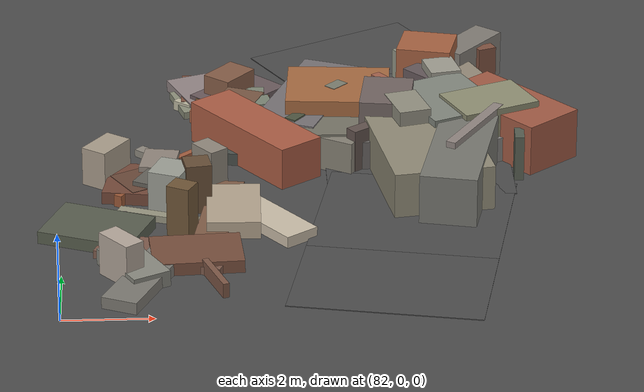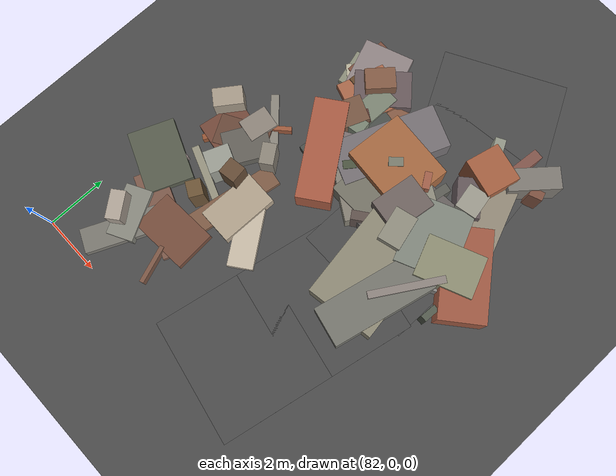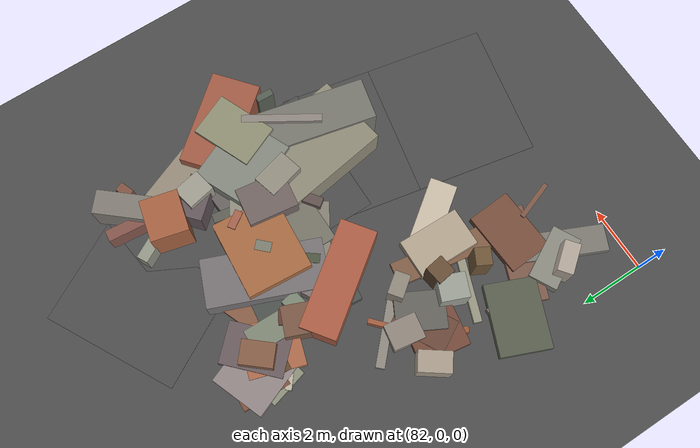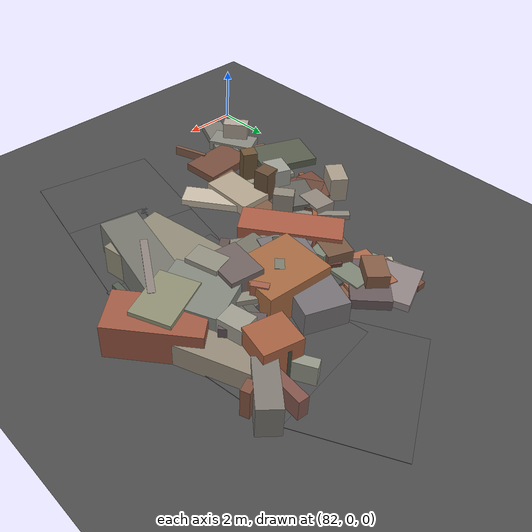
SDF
<sdf version="1.6">
 <world name="navitas_arena">
  <model name="ground_plane">
   <static>true</static>
   <link name="link">
    <collision name="collision">
     <geometry><plane><normal>0 0 1</normal><size>400 400</size></plane></geometry>
     <surface><friction><ode><mu>0.800</mu><mu2>0.800</mu2></ode></friction></surface>
    </collision>
    <visual name="visual">
     <cast_shadows>false</cast_shadows>
     <geometry><plane><normal>0 0 1</normal><size>400 400</size></plane></geometry>
     <material>
      <specular>0.04 0.04 0.04 1</specular>
      <script>
       <uri>file://media/materials/scripts/navitas_asphalt.material</uri>
       <name>Navitas/RealArenaAsphalt</name>
      </script>
     </material>
    </visual>
   </link>
  </model>
  <model name="road_zor_2_10">
   <static>true</static>
   <pose>89.139 1.800 0.040 0 0 1.373</pose>
   <link name="link">
    <collision name="col"><geometry><box><size>3.756 4.200 0.020</size></box></geometry></collision>
    <visual name="vis">
     <geometry><box><size>3.756 4.200 0.020</size></box></geometry>
     <material>
      <specular>0.04 0.04 0.04 1</specular>
      <script>
       <uri>file://media/materials/scripts/navitas_asphalt.material</uri>
       <name>Navitas/RealArenaAsphalt</name>
      </script>
     </material>
    </visual>
   </link>
  </model>
  <model name="road_zor_2_11">
   <static>true</static>
   <pose>89.698 4.600 0.040 0 0 1.374</pose>
   <link name="link">
    <collision name="col"><geometry><box><size>3.755 4.200 0.020</size></box></geometry></collision>
    <visual name="vis">
     <geometry><box><size>3.755 4.200 0.020</size></box></geometry>
     <material>
      <specular>0.04 0.04 0.04 1</specular>
      <script>
       <uri>file://media/materials/scripts/navitas_asphalt.material</uri>
       <name>Navitas/RealArenaAsphalt</name>
      </script>
     </material>
    </visual>
   </link>
  </model>
  <model name="road_zor_2_12">
   <static>true</static>
   <pose>89.978 7.460 0.040 0 0 1.570</pose>
   <link name="link">
    <collision name="col"><geometry><box><size>3.820 4.200 0.020</size></box></geometry></collision>
    <visual name="vis">
     <geometry><box><size>3.820 4.200 0.020</size></box></geometry>
     <material>
      <specular>0.04 0.04 0.04 1</specular>
      <script>
       <uri>file://media/materials/scripts/navitas_asphalt.material</uri>
       <name>Navitas/RealArenaAsphalt</name>
      </script>
     </material>
    </visual>
   </link>
  </model>
  <model name="road_zor_2_13">
   <static>true</static>
   <pose>89.792 10.340 0.040 0 0 1.702</pose>
   <link name="link">
    <collision name="col"><geometry><box><size>3.765 4.200 0.020</size></box></geometry></collision>
    <visual name="vis">
     <geometry><box><size>3.765 4.200 0.020</size></box></geometry>
     <material>
      <specular>0.04 0.04 0.04 1</specular>
      <script>
       <uri>file://media/materials/scripts/navitas_asphalt.material</uri>
       <name>Navitas/RealArenaAsphalt</name>
      </script>
     </material>
    </visual>
   </link>
  </model>
  <model name="road_zor_2_14">
   <static>true</static>
   <pose>89.014 12.833 0.040 0 0 2.073</pose>
   <link name="link">
    <collision name="col"><geometry><box><size>3.349 4.200 0.020</size></box></geometry></collision>
    <visual name="vis">
     <geometry><box><size>3.349 4.200 0.020</size></box></geometry>
     <material>
      <specular>0.04 0.04 0.04 1</specular>
      <script>
       <uri>file://media/materials/scripts/navitas_asphalt.material</uri>
       <name>Navitas/RealArenaAsphalt</name>
      </script>
     </material>
    </visual>
   </link>
  </model>
  <model name="blk_zor_2_2_0">
   <static>true</static>
   <pose>89.169 8.593 0.000 0 0 0</pose>
   <link name="link">
    <collision name="col_0">
     <pose>0.312 -0.887 0.514 0.000 0.000 3.781</pose>
     <geometry><box><size>2.586 0.300 1.029</size></box></geometry>
    </collision>
    <visual name="vis_0">
     <pose>0.312 -0.887 0.514 0.000 0.000 3.781</pose>
     <geometry><box><size>2.586 0.300 1.029</size></box></geometry>
     <material>
      <ambient>0.36 0.31 0.29 1</ambient>
      <diffuse>0.39 0.33 0.31 1</diffuse>
      <specular>0.05 0.05 0.045 1</specular>
     </material>
    </visual>
    <collision name="col_1">
     <pose>0.546 -0.175 0.464 0.000 0.000 1.514</pose>
     <geometry><box><size>0.316 0.416 0.927</size></box></geometry>
    </collision>
    <visual name="vis_1">
     <pose>0.546 -0.175 0.464 0.000 0.000 1.514</pose>
     <geometry><box><size>0.316 0.416 0.927</size></box></geometry>
     <material>
      <ambient>0.54 0.51 0.45 1</ambient>
      <diffuse>0.58 0.55 0.49 1</diffuse>
      <specular>0.05 0.05 0.045 1</specular>
     </material>
    </visual>
    <collision name="col_2">
     <pose>0.766 -0.119 0.439 0.000 0.000 3.158</pose>
     <geometry><box><size>1.869 0.158 0.878</size></box></geometry>
    </collision>
    <visual name="vis_2">
     <pose>0.766 -0.119 0.439 0.000 0.000 3.158</pose>
     <geometry><box><size>1.869 0.158 0.878</size></box></geometry>
     <material>
      <ambient>0.64 0.63 0.56 1</ambient>
      <diffuse>0.70 0.69 0.61 1</diffuse>
      <specular>0.05 0.05 0.045 1</specular>
     </material>
    </visual>
    <collision name="col_3">
     <pose>-0.960 0.451 0.611 0.000 0.000 2.368</pose>
     <geometry><box><size>0.296 0.462 1.221</size></box></geometry>
    </collision>
    <visual name="vis_3">
     <pose>-0.960 0.451 0.611 0.000 0.000 2.368</pose>
     <geometry><box><size>0.296 0.462 1.221</size></box></geometry>
     <material>
      <ambient>0.45 0.46 0.41 1</ambient>
      <diffuse>0.49 0.50 0.44 1</diffuse>
      <specular>0.05 0.05 0.045 1</specular>
     </material>
    </visual>
    <collision name="col_4">
     <pose>0.118 -0.460 0.301 0.000 0.000 1.837</pose>
     <geometry><box><size>0.359 0.343 0.603</size></box></geometry>
    </collision>
    <visual name="vis_4">
     <pose>0.118 -0.460 0.301 0.000 0.000 1.837</pose>
     <geometry><box><size>0.359 0.343 0.603</size></box></geometry>
     <material>
      <ambient>0.65 0.61 0.54 1</ambient>
      <diffuse>0.71 0.66 0.59 1</diffuse>
      <specular>0.05 0.05 0.045 1</specular>
     </material>
    </visual>
    <collision name="col_5">
     <pose>0.118 0.722 0.443 0.000 0.000 2.625</pose>
     <geometry><box><size>1.812 0.369 0.885</size></box></geometry>
    </collision>
    <visual name="vis_5">
     <pose>0.118 0.722 0.443 0.000 0.000 2.625</pose>
     <geometry><box><size>1.812 0.369 0.885</size></box></geometry>
     <material>
      <ambient>0.53 0.52 0.47 1</ambient>
      <diffuse>0.57 0.56 0.50 1</diffuse>
      <specular>0.05 0.05 0.045 1</specular>
     </material>
    </visual>
    <collision name="col_6">
     <pose>0.523 0.443 0.357 0.000 0.000 1.403</pose>
     <geometry><box><size>1.568 0.288 0.713</size></box></geometry>
    </collision>
    <visual name="vis_6">
     <pose>0.523 0.443 0.357 0.000 0.000 1.403</pose>
     <geometry><box><size>1.568 0.288 0.713</size></box></geometry>
     <material>
      <ambient>0.34 0.34 0.31 1</ambient>
      <diffuse>0.37 0.37 0.34 1</diffuse>
      <specular>0.05 0.05 0.045 1</specular>
     </material>
    </visual>
    <collision name="col_7">
     <pose>-0.547 0.396 0.371 0.000 0.000 3.007</pose>
     <geometry><box><size>1.194 0.198 0.742</size></box></geometry>
    </collision>
    <visual name="vis_7">
     <pose>-0.547 0.396 0.371 0.000 0.000 3.007</pose>
     <geometry><box><size>1.194 0.198 0.742</size></box></geometry>
     <material>
      <ambient>0.63 0.59 0.58 1</ambient>
      <diffuse>0.68 0.64 0.62 1</diffuse>
      <specular>0.05 0.05 0.045 1</specular>
     </material>
    </visual>
    <collision name="col_8">
     <pose>0.123 0.723 0.630 0.000 0.000 2.167</pose>
     <geometry><box><size>0.552 0.234 1.260</size></box></geometry>
    </collision>
    <visual name="vis_8">
     <pose>0.123 0.723 0.630 0.000 0.000 2.167</pose>
     <geometry><box><size>0.552 0.234 1.260</size></box></geometry>
     <material>
      <ambient>0.61 0.36 0.28 1</ambient>
      <diffuse>0.65 0.39 0.30 1</diffuse>
      <specular>0.05 0.05 0.045 1</specular>
     </material>
    </visual>
    <collision name="col_9">
     <pose>-0.916 0.479 0.604 0.000 0.000 3.066</pose>
     <geometry><box><size>2.349 1.958 1.208</size></box></geometry>
    </collision>
    <visual name="vis_9">
     <pose>-0.916 0.479 0.604 0.000 0.000 3.066</pose>
     <geometry><box><size>2.349 1.958 1.208</size></box></geometry>
     <material>
      <ambient>0.61 0.39 0.24 1</ambient>
      <diffuse>0.66 0.42 0.26 1</diffuse>
      <specular>0.05 0.05 0.045 1</specular>
     </material>
    </visual>
   </link>
  </model>
  <model name="blk_zor_2_2_1">
   <static>true</static>
   <pose>90.621 7.213 0.000 0 0 0</pose>
   <link name="link">
    <collision name="col_0">
     <pose>0.189 0.175 0.388 0.000 0.000 2.080</pose>
     <geometry><box><size>1.239 1.194 0.776</size></box></geometry>
    </collision>
    <visual name="vis_0">
     <pose>0.189 0.175 0.388 0.000 0.000 2.080</pose>
     <geometry><box><size>1.239 1.194 0.776</size></box></geometry>
     <material>
      <ambient>0.58 0.58 0.52 1</ambient>
      <diffuse>0.63 0.63 0.56 1</diffuse>
      <specular>0.05 0.05 0.045 1</specular>
     </material>
    </visual>
    <collision name="col_1">
     <pose>-1.125 1.232 0.385 0.000 0.000 2.233</pose>
     <geometry><box><size>1.858 0.280 0.770</size></box></geometry>
    </collision>
    <visual name="vis_1">
     <pose>-1.125 1.232 0.385 0.000 0.000 2.233</pose>
     <geometry><box><size>1.858 0.280 0.770</size></box></geometry>
     <material>
      <ambient>0.51 0.50 0.47 1</ambient>
      <diffuse>0.55 0.53 0.51 1</diffuse>
      <specular>0.05 0.05 0.045 1</specular>
     </material>
    </visual>
    <collision name="col_2">
     <pose>0.197 1.115 0.349 0.000 0.000 1.976</pose>
     <geometry><box><size>1.187 0.341 0.697</size></box></geometry>
    </collision>
    <visual name="vis_2">
     <pose>0.197 1.115 0.349 0.000 0.000 1.976</pose>
     <geometry><box><size>1.187 0.341 0.697</size></box></geometry>
     <material>
      <ambient>0.36 0.32 0.34 1</ambient>
      <diffuse>0.39 0.34 0.36 1</diffuse>
      <specular>0.05 0.05 0.045 1</specular>
     </material>
    </visual>
    <collision name="col_3">
     <pose>-0.589 0.703 0.591 0.000 0.000 2.886</pose>
     <geometry><box><size>1.658 0.274 1.183</size></box></geometry>
    </collision>
    <visual name="vis_3">
     <pose>-0.589 0.703 0.591 0.000 0.000 2.886</pose>
     <geometry><box><size>1.658 0.274 1.183</size></box></geometry>
     <material>
      <ambient>0.43 0.42 0.42 1</ambient>
      <diffuse>0.47 0.46 0.45 1</diffuse>
      <specular>0.05 0.05 0.045 1</specular>
     </material>
    </visual>
    <collision name="col_4">
     <pose>0.291 -0.646 0.298 0.000 0.000 1.623</pose>
     <geometry><box><size>1.203 0.313 0.597</size></box></geometry>
    </collision>
    <visual name="vis_4">
     <pose>0.291 -0.646 0.298 0.000 0.000 1.623</pose>
     <geometry><box><size>1.203 0.313 0.597</size></box></geometry>
     <material>
      <ambient>0.39 0.28 0.22 1</ambient>
      <diffuse>0.42 0.30 0.23 1</diffuse>
      <specular>0.05 0.05 0.045 1</specular>
     </material>
    </visual>
    <collision name="col_5">
     <pose>-1.186 -1.053 0.380 0.000 0.000 1.367</pose>
     <geometry><box><size>0.443 0.531 0.760</size></box></geometry>
    </collision>
    <visual name="vis_5">
     <pose>-1.186 -1.053 0.380 0.000 0.000 1.367</pose>
     <geometry><box><size>0.443 0.531 0.760</size></box></geometry>
     <material>
      <ambient>0.52 0.49 0.46 1</ambient>
      <diffuse>0.57 0.53 0.50 1</diffuse>
      <specular>0.05 0.05 0.045 1</specular>
     </material>
    </visual>
    <collision name="col_6">
     <pose>-1.299 1.022 0.704 0.000 0.000 1.432</pose>
     <geometry><box><size>1.478 1.140 1.409</size></box></geometry>
    </collision>
    <visual name="vis_6">
     <pose>-1.299 1.022 0.704 0.000 0.000 1.432</pose>
     <geometry><box><size>1.478 1.140 1.409</size></box></geometry>
     <material>
      <ambient>0.42 0.37 0.36 1</ambient>
      <diffuse>0.45 0.40 0.39 1</diffuse>
      <specular>0.05 0.05 0.045 1</specular>
     </material>
    </visual>
    <collision name="col_7">
     <pose>1.386 0.445 0.545 0.000 0.000 2.137</pose>
     <geometry><box><size>0.361 0.304 1.089</size></box></geometry>
    </collision>
    <visual name="vis_7">
     <pose>1.386 0.445 0.545 0.000 0.000 2.137</pose>
     <geometry><box><size>0.361 0.304 1.089</size></box></geometry>
     <material>
      <ambient>0.63 0.37 0.31 1</ambient>
      <diffuse>0.69 0.40 0.33 1</diffuse>
      <specular>0.05 0.05 0.045 1</specular>
     </material>
    </visual>
   </link>
  </model>
  <model name="blk_zor_2_2_2">
   <static>true</static>
   <pose>87.882 8.145 0.000 0 0 0</pose>
   <link name="link">
    <collision name="col_0">
     <pose>-1.571 -0.407 0.486 0.000 0.000 2.206</pose>
     <geometry><box><size>3.346 1.117 0.972</size></box></geometry>
    </collision>
    <visual name="vis_0">
     <pose>-1.571 -0.407 0.486 0.000 0.000 2.206</pose>
     <geometry><box><size>3.346 1.117 0.972</size></box></geometry>
     <material>
      <ambient>0.63 0.34 0.25 1</ambient>
      <diffuse>0.68 0.37 0.27 1</diffuse>
      <specular>0.05 0.05 0.045 1</specular>
     </material>
    </visual>
    <collision name="col_1">
     <pose>-0.735 -0.641 0.329 0.000 0.000 3.148</pose>
     <geometry><box><size>2.348 0.246 0.658</size></box></geometry>
    </collision>
    <visual name="vis_1">
     <pose>-0.735 -0.641 0.329 0.000 0.000 3.148</pose>
     <geometry><box><size>2.348 0.246 0.658</size></box></geometry>
     <material>
      <ambient>0.69 0.65 0.58 1</ambient>
      <diffuse>0.75 0.70 0.62 1</diffuse>
      <specular>0.05 0.05 0.045 1</specular>
     </material>
    </visual>
    <collision name="col_2">
     <pose>1.475 -0.360 0.418 0.000 0.000 3.141</pose>
     <geometry><box><size>3.896 1.313 0.837</size></box></geometry>
    </collision>
    <visual name="vis_2">
     <pose>1.475 -0.360 0.418 0.000 0.000 3.141</pose>
     <geometry><box><size>3.896 1.313 0.837</size></box></geometry>
     <material>
      <ambient>0.43 0.42 0.38 1</ambient>
      <diffuse>0.47 0.46 0.41 1</diffuse>
      <specular>0.05 0.05 0.045 1</specular>
     </material>
    </visual>
    <collision name="col_3">
     <pose>-0.654 -0.123 0.454 0.000 0.000 2.489</pose>
     <geometry><box><size>0.276 0.418 0.908</size></box></geometry>
    </collision>
    <visual name="vis_3">
     <pose>-0.654 -0.123 0.454 0.000 0.000 2.489</pose>
     <geometry><box><size>0.276 0.418 0.908</size></box></geometry>
     <material>
      <ambient>0.29 0.31 0.25 1</ambient>
      <diffuse>0.31 0.34 0.26 1</diffuse>
      <specular>0.05 0.05 0.045 1</specular>
     </material>
    </visual>
    <collision name="col_4">
     <pose>0.235 0.315 0.391 0.000 0.000 4.173</pose>
     <geometry><box><size>2.701 2.370 0.783</size></box></geometry>
    </collision>
    <visual name="vis_4">
     <pose>0.235 0.315 0.391 0.000 0.000 4.173</pose>
     <geometry><box><size>2.701 2.370 0.783</size></box></geometry>
     <material>
      <ambient>0.49 0.47 0.42 1</ambient>
      <diffuse>0.53 0.51 0.46 1</diffuse>
      <specular>0.05 0.05 0.045 1</specular>
     </material>
    </visual>
    <collision name="col_5">
     <pose>-0.276 1.251 0.436 0.000 0.000 4.329</pose>
     <geometry><box><size>3.553 1.458 0.872</size></box></geometry>
    </collision>
    <visual name="vis_5">
     <pose>-0.276 1.251 0.436 0.000 0.000 4.329</pose>
     <geometry><box><size>3.553 1.458 0.872</size></box></geometry>
     <material>
      <ambient>0.44 0.42 0.43 1</ambient>
      <diffuse>0.47 0.45 0.46 1</diffuse>
      <specular>0.05 0.05 0.045 1</specular>
     </material>
    </visual>
   </link>
  </model>
  <model name="blk_zor_2_2_3">
   <static>true</static>
   <pose>91.142 10.743 0.000 0 0 0</pose>
   <link name="link">
    <collision name="col_0">
     <pose>-0.219 1.014 0.380 0.000 0.000 1.480</pose>
     <geometry><box><size>1.778 0.347 0.760</size></box></geometry>
    </collision>
    <visual name="vis_0">
     <pose>-0.219 1.014 0.380 0.000 0.000 1.480</pose>
     <geometry><box><size>1.778 0.347 0.760</size></box></geometry>
     <material>
      <ambient>0.48 0.32 0.28 1</ambient>
      <diffuse>0.52 0.34 0.30 1</diffuse>
      <specular>0.05 0.05 0.045 1</specular>
     </material>
    </visual>
    <collision name="col_1">
     <pose>0.234 -0.783 0.388 0.000 0.000 1.955</pose>
     <geometry><box><size>2.576 1.092 0.777</size></box></geometry>
    </collision>
    <visual name="vis_1">
     <pose>0.234 -0.783 0.388 0.000 0.000 1.955</pose>
     <geometry><box><size>2.576 1.092 0.777</size></box></geometry>
     <material>
      <ambient>0.55 0.51 0.45 1</ambient>
      <diffuse>0.59 0.55 0.48 1</diffuse>
      <specular>0.05 0.05 0.045 1</specular>
     </material>
    </visual>
    <collision name="col_2">
     <pose>-0.703 0.214 0.706 0.000 0.000 2.905</pose>
     <geometry><box><size>1.265 1.132 1.412</size></box></geometry>
    </collision>
    <visual name="vis_2">
     <pose>-0.703 0.214 0.706 0.000 0.000 2.905</pose>
     <geometry><box><size>1.265 1.132 1.412</size></box></geometry>
     <material>
      <ambient>0.61 0.36 0.24 1</ambient>
      <diffuse>0.66 0.39 0.26 1</diffuse>
      <specular>0.05 0.05 0.045 1</specular>
     </material>
    </visual>
    <collision name="col_3">
     <pose>-0.614 -0.838 0.549 0.000 0.000 3.863</pose>
     <geometry><box><size>0.740 1.278 1.098</size></box></geometry>
    </collision>
    <visual name="vis_3">
     <pose>-0.614 -0.838 0.549 0.000 0.000 3.863</pose>
     <geometry><box><size>0.740 1.278 1.098</size></box></geometry>
     <material>
      <ambient>0.37 0.33 0.33 1</ambient>
      <diffuse>0.40 0.35 0.36 1</diffuse>
      <specular>0.05 0.05 0.045 1</specular>
     </material>
    </visual>
    <collision name="col_4">
     <pose>-0.733 0.657 0.582 0.000 0.000 2.641</pose>
     <geometry><box><size>0.270 0.280 1.164</size></box></geometry>
    </collision>
    <visual name="vis_4">
     <pose>-0.733 0.657 0.582 0.000 0.000 2.641</pose>
     <geometry><box><size>0.270 0.280 1.164</size></box></geometry>
     <material>
      <ambient>0.26 0.27 0.23 1</ambient>
      <diffuse>0.28 0.30 0.25 1</diffuse>
      <specular>0.05 0.05 0.045 1</specular>
     </material>
    </visual>
    <collision name="col_5">
     <pose>0.340 1.061 0.539 0.000 0.000 4.009</pose>
     <geometry><box><size>1.673 0.718 1.079</size></box></geometry>
    </collision>
    <visual name="vis_5">
     <pose>0.340 1.061 0.539 0.000 0.000 4.009</pose>
     <geometry><box><size>1.673 0.718 1.079</size></box></geometry>
     <material>
      <ambient>0.47 0.45 0.42 1</ambient>
      <diffuse>0.51 0.49 0.46 1</diffuse>
      <specular>0.05 0.05 0.045 1</specular>
     </material>
    </visual>
    <collision name="col_6">
     <pose>-0.644 0.229 0.377 0.000 0.000 2.074</pose>
     <geometry><box><size>2.663 0.344 0.754</size></box></geometry>
    </collision>
    <visual name="vis_6">
     <pose>-0.644 0.229 0.377 0.000 0.000 2.074</pose>
     <geometry><box><size>2.663 0.344 0.754</size></box></geometry>
     <material>
      <ambient>0.55 0.55 0.50 1</ambient>
      <diffuse>0.59 0.60 0.54 1</diffuse>
      <specular>0.05 0.05 0.045 1</specular>
     </material>
    </visual>
    <collision name="col_7">
     <pose>0.724 0.797 0.502 0.000 0.000 3.515</pose>
     <geometry><box><size>0.441 0.281 1.004</size></box></geometry>
    </collision>
    <visual name="vis_7">
     <pose>0.724 0.797 0.502 0.000 0.000 3.515</pose>
     <geometry><box><size>0.441 0.281 1.004</size></box></geometry>
     <material>
      <ambient>0.47 0.31 0.24 1</ambient>
      <diffuse>0.51 0.33 0.26 1</diffuse>
      <specular>0.05 0.05 0.045 1</specular>
     </material>
    </visual>
   </link>
  </model>
  <model name="blk_zor_2_2_4">
   <static>true</static>
   <pose>90.663 7.169 0.000 0 0 0</pose>
   <link name="link">
    <collision name="col_0">
     <pose>0.042 1.051 0.623 0.000 0.000 1.996</pose>
     <geometry><box><size>2.180 1.805 1.245</size></box></geometry>
    </collision>
    <visual name="vis_0">
     <pose>0.042 1.051 0.623 0.000 0.000 1.996</pose>
     <geometry><box><size>2.180 1.805 1.245</size></box></geometry>
     <material>
      <ambient>0.48 0.50 0.46 1</ambient>
      <diffuse>0.52 0.54 0.50 1</diffuse>
      <specular>0.05 0.05 0.045 1</specular>
     </material>
    </visual>
    <collision name="col_1">
     <pose>0.536 -0.598 0.665 0.000 0.000 1.018</pose>
     <geometry><box><size>2.375 0.230 1.331</size></box></geometry>
    </collision>
    <visual name="vis_1">
     <pose>0.536 -0.598 0.665 0.000 0.000 1.018</pose>
     <geometry><box><size>2.375 0.230 1.331</size></box></geometry>
     <material>
      <ambient>0.53 0.49 0.48 1</ambient>
      <diffuse>0.57 0.53 0.51 1</diffuse>
      <specular>0.05 0.05 0.045 1</specular>
     </material>
    </visual>
    <collision name="col_2">
     <pose>-0.563 -0.696 0.541 0.000 0.000 1.726</pose>
     <geometry><box><size>3.780 2.270 1.081</size></box></geometry>
    </collision>
    <visual name="vis_2">
     <pose>-0.563 -0.696 0.541 0.000 0.000 1.726</pose>
     <geometry><box><size>3.780 2.270 1.081</size></box></geometry>
     <material>
      <ambient>0.53 0.51 0.44 1</ambient>
      <diffuse>0.57 0.55 0.47 1</diffuse>
      <specular>0.05 0.05 0.045 1</specular>
     </material>
    </visual>
    <collision name="col_3">
     <pose>1.545 -0.596 0.528 0.000 0.000 1.522</pose>
     <geometry><box><size>0.522 0.212 1.056</size></box></geometry>
    </collision>
    <visual name="vis_3">
     <pose>1.545 -0.596 0.528 0.000 0.000 1.522</pose>
     <geometry><box><size>0.522 0.212 1.056</size></box></geometry>
     <material>
      <ambient>0.32 0.34 0.30 1</ambient>
      <diffuse>0.34 0.37 0.32 1</diffuse>
      <specular>0.05 0.05 0.045 1</specular>
     </material>
    </visual>
    <collision name="col_4">
     <pose>-0.182 0.320 0.560 0.000 0.000 1.884</pose>
     <geometry><box><size>0.453 0.565 1.119</size></box></geometry>
    </collision>
    <visual name="vis_4">
     <pose>-0.182 0.320 0.560 0.000 0.000 1.884</pose>
     <geometry><box><size>0.453 0.565 1.119</size></box></geometry>
     <material>
      <ambient>0.44 0.43 0.38 1</ambient>
      <diffuse>0.48 0.46 0.41 1</diffuse>
      <specular>0.05 0.05 0.045 1</specular>
     </material>
    </visual>
    <collision name="col_5">
     <pose>1.454 0.978 0.587 0.000 0.000 2.265</pose>
     <geometry><box><size>2.896 1.485 1.174</size></box></geometry>
    </collision>
    <visual name="vis_5">
     <pose>1.454 0.978 0.587 0.000 0.000 2.265</pose>
     <geometry><box><size>2.896 1.485 1.174</size></box></geometry>
     <material>
      <ambient>0.59 0.33 0.25 1</ambient>
      <diffuse>0.64 0.36 0.27 1</diffuse>
      <specular>0.05 0.05 0.045 1</specular>
     </material>
    </visual>
    <collision name="col_6">
     <pose>0.127 -1.473 0.592 0.000 0.000 1.348</pose>
     <geometry><box><size>3.439 1.280 1.184</size></box></geometry>
    </collision>
    <visual name="vis_6">
     <pose>0.127 -1.473 0.592 0.000 0.000 1.348</pose>
     <geometry><box><size>3.439 1.280 1.184</size></box></geometry>
     <material>
      <ambient>0.44 0.43 0.41 1</ambient>
      <diffuse>0.47 0.47 0.44 1</diffuse>
      <specular>0.05 0.05 0.045 1</specular>
     </material>
    </visual>
    <collision name="col_7">
     <pose>-0.904 0.422 0.711 0.000 0.000 3.405</pose>
     <geometry><box><size>0.744 1.114 1.422</size></box></geometry>
    </collision>
    <visual name="vis_7">
     <pose>-0.904 0.422 0.711 0.000 0.000 3.405</pose>
     <geometry><box><size>0.744 1.114 1.422</size></box></geometry>
     <material>
      <ambient>0.54 0.53 0.48 1</ambient>
      <diffuse>0.58 0.57 0.51 1</diffuse>
      <specular>0.05 0.05 0.045 1</specular>
     </material>
    </visual>
   </link>
  </model>
  <model name="blk_zor_2_2_5">
   <static>true</static>
   <pose>90.837 8.985 0.000 0 0 0</pose>
   <link name="link">
    <collision name="col_0">
     <pose>0.932 -1.186 0.313 0.000 0.000 0.481</pose>
     <geometry><box><size>0.782 1.118 0.627</size></box></geometry>
    </collision>
    <visual name="vis_0">
     <pose>0.932 -1.186 0.313 0.000 0.000 0.481</pose>
     <geometry><box><size>0.782 1.118 0.627</size></box></geometry>
     <material>
      <ambient>0.51 0.50 0.49 1</ambient>
      <diffuse>0.55 0.54 0.53 1</diffuse>
      <specular>0.05 0.05 0.045 1</specular>
     </material>
    </visual>
    <collision name="col_1">
     <pose>0.798 -1.042 0.659 0.000 0.000 0.407</pose>
     <geometry><box><size>1.860 1.340 1.318</size></box></geometry>
    </collision>
    <visual name="vis_1">
     <pose>0.798 -1.042 0.659 0.000 0.000 0.407</pose>
     <geometry><box><size>1.860 1.340 1.318</size></box></geometry>
     <material>
      <ambient>0.53 0.53 0.43 1</ambient>
      <diffuse>0.57 0.57 0.46 1</diffuse>
      <specular>0.05 0.05 0.045 1</specular>
     </material>
    </visual>
    <collision name="col_2">
     <pose>-0.296 -0.336 0.558 0.000 0.000 0.941</pose>
     <geometry><box><size>0.724 0.352 1.115</size></box></geometry>
    </collision>
    <visual name="vis_2">
     <pose>-0.296 -0.336 0.558 0.000 0.000 0.941</pose>
     <geometry><box><size>0.724 0.352 1.115</size></box></geometry>
     <material>
      <ambient>0.59 0.53 0.51 1</ambient>
      <diffuse>0.64 0.58 0.56 1</diffuse>
      <specular>0.05 0.05 0.045 1</specular>
     </material>
    </visual>
    <collision name="col_3">
     <pose>-0.141 0.864 0.654 0.000 0.000 1.769</pose>
     <geometry><box><size>0.841 0.716 1.308</size></box></geometry>
    </collision>
    <visual name="vis_3">
     <pose>-0.141 0.864 0.654 0.000 0.000 1.769</pose>
     <geometry><box><size>0.841 0.716 1.308</size></box></geometry>
     <material>
      <ambient>0.58 0.58 0.53 1</ambient>
      <diffuse>0.63 0.62 0.57 1</diffuse>
      <specular>0.05 0.05 0.045 1</specular>
     </material>
    </visual>
    <collision name="col_4">
     <pose>-1.166 -0.737 0.356 0.000 0.000 1.637</pose>
     <geometry><box><size>2.482 2.327 0.711</size></box></geometry>
    </collision>
    <visual name="vis_4">
     <pose>-1.166 -0.737 0.356 0.000 0.000 1.637</pose>
     <geometry><box><size>2.482 2.327 0.711</size></box></geometry>
     <material>
      <ambient>0.38 0.36 0.36 1</ambient>
      <diffuse>0.41 0.39 0.38 1</diffuse>
      <specular>0.05 0.05 0.045 1</specular>
     </material>
    </visual>
    <collision name="col_5">
     <pose>0.499 -0.806 0.359 0.000 0.000 -0.074</pose>
     <geometry><box><size>0.773 0.573 0.717</size></box></geometry>
    </collision>
    <visual name="vis_5">
     <pose>0.499 -0.806 0.359 0.000 0.000 -0.074</pose>
     <geometry><box><size>0.773 0.573 0.717</size></box></geometry>
     <material>
      <ambient>0.73 0.71 0.60 1</ambient>
      <diffuse>0.79 0.77 0.65 1</diffuse>
      <specular>0.05 0.05 0.045 1</specular>
     </material>
    </visual>
   </link>
  </model>
  <model name="deb_zor_16">
   <static>true</static>
   <pose>85.696 10.488 0.000 0 0 0</pose>
   <link name="link">
    <collision name="col_0">
     <pose>0.546 0.076 0.130 0.000 0.000 2.041</pose>
     <geometry><box><size>0.313 0.422 0.261</size></box></geometry>
    </collision>
    <visual name="vis_0">
     <pose>0.546 0.076 0.130 0.000 0.000 2.041</pose>
     <geometry><box><size>0.313 0.422 0.261</size></box></geometry>
     <material>
      <ambient>0.51 0.49 0.47 1</ambient>
      <diffuse>0.55 0.53 0.51 1</diffuse>
      <specular>0.05 0.05 0.045 1</specular>
     </material>
    </visual>
    <collision name="col_1">
     <pose>-0.332 0.247 0.085 0.000 0.000 0.269</pose>
     <geometry><box><size>1.690 1.220 0.170</size></box></geometry>
    </collision>
    <visual name="vis_1">
     <pose>-0.332 0.247 0.085 0.000 0.000 0.269</pose>
     <geometry><box><size>1.690 1.220 0.170</size></box></geometry>
     <material>
      <ambient>0.52 0.53 0.46 1</ambient>
      <diffuse>0.56 0.57 0.49 1</diffuse>
      <specular>0.05 0.05 0.045 1</specular>
     </material>
    </visual>
    <collision name="col_2">
     <pose>0.287 0.235 0.177 0.000 0.000 0.768</pose>
     <geometry><box><size>1.878 1.256 0.355</size></box></geometry>
    </collision>
    <visual name="vis_2">
     <pose>0.287 0.235 0.177 0.000 0.000 0.768</pose>
     <geometry><box><size>1.878 1.256 0.355</size></box></geometry>
     <material>
      <ambient>0.39 0.33 0.34 1</ambient>
      <diffuse>0.42 0.36 0.37 1</diffuse>
      <specular>0.05 0.05 0.045 1</specular>
     </material>
    </visual>
    <collision name="col_3">
     <pose>-0.206 0.462 0.131 0.000 0.000 1.942</pose>
     <geometry><box><size>2.031 1.704 0.263</size></box></geometry>
    </collision>
    <visual name="vis_3">
     <pose>-0.206 0.462 0.131 0.000 0.000 1.942</pose>
     <geometry><box><size>2.031 1.704 0.263</size></box></geometry>
     <material>
      <ambient>0.54 0.49 0.49 1</ambient>
      <diffuse>0.58 0.53 0.53 1</diffuse>
      <specular>0.05 0.05 0.045 1</specular>
     </material>
    </visual>
    <collision name="col_4">
     <pose>-0.055 0.397 0.096 0.000 0.000 1.341</pose>
     <geometry><box><size>1.482 0.153 0.193</size></box></geometry>
    </collision>
    <visual name="vis_4">
     <pose>-0.055 0.397 0.096 0.000 0.000 1.341</pose>
     <geometry><box><size>1.482 0.153 0.193</size></box></geometry>
     <material>
      <ambient>0.64 0.59 0.53 1</ambient>
      <diffuse>0.69 0.64 0.57 1</diffuse>
      <specular>0.05 0.05 0.045 1</specular>
     </material>
    </visual>
    <collision name="col_5">
     <pose>0.297 -0.100 0.120 0.000 0.000 1.475</pose>
     <geometry><box><size>1.402 0.144 0.239</size></box></geometry>
    </collision>
    <visual name="vis_5">
     <pose>0.297 -0.100 0.120 0.000 0.000 1.475</pose>
     <geometry><box><size>1.402 0.144 0.239</size></box></geometry>
     <material>
      <ambient>0.70 0.67 0.60 1</ambient>
      <diffuse>0.75 0.72 0.65 1</diffuse>
      <specular>0.05 0.05 0.045 1</specular>
     </material>
    </visual>
   </link>
  </model>
  <model name="deb_zor_28">
   <static>true</static>
   <pose>85.600 10.538 0.000 0 0 0</pose>
   <link name="link">
    <collision name="col_0">
     <pose>0.228 -0.237 0.149 0.000 0.000 2.839</pose>
     <geometry><box><size>1.542 1.680 0.298</size></box></geometry>
    </collision>
    <visual name="vis_0">
     <pose>0.228 -0.237 0.149 0.000 0.000 2.839</pose>
     <geometry><box><size>1.542 1.680 0.298</size></box></geometry>
     <material>
      <ambient>0.63 0.39 0.28 1</ambient>
      <diffuse>0.68 0.42 0.30 1</diffuse>
      <specular>0.05 0.05 0.045 1</specular>
     </material>
    </visual>
    <collision name="col_1">
     <pose>-0.877 -0.129 0.114 0.000 0.000 4.037</pose>
     <geometry><box><size>0.192 0.468 0.229</size></box></geometry>
    </collision>
    <visual name="vis_1">
     <pose>-0.877 -0.129 0.114 0.000 0.000 4.037</pose>
     <geometry><box><size>0.192 0.468 0.229</size></box></geometry>
     <material>
      <ambient>0.68 0.66 0.58 1</ambient>
      <diffuse>0.74 0.72 0.63 1</diffuse>
      <specular>0.05 0.05 0.045 1</specular>
     </material>
    </visual>
    <collision name="col_2">
     <pose>0.190 0.223 0.407 0.000 0.000 2.443</pose>
     <geometry><box><size>0.714 0.991 0.814</size></box></geometry>
    </collision>
    <visual name="vis_2">
     <pose>0.190 0.223 0.407 0.000 0.000 2.443</pose>
     <geometry><box><size>0.714 0.991 0.814</size></box></geometry>
     <material>
      <ambient>0.49 0.35 0.26 1</ambient>
      <diffuse>0.53 0.37 0.28 1</diffuse>
      <specular>0.05 0.05 0.045 1</specular>
     </material>
    </visual>
    <collision name="col_3">
     <pose>-0.774 0.607 0.118 0.000 0.000 1.538</pose>
     <geometry><box><size>1.479 0.306 0.237</size></box></geometry>
    </collision>
    <visual name="vis_3">
     <pose>-0.774 0.607 0.118 0.000 0.000 1.538</pose>
     <geometry><box><size>1.479 0.306 0.237</size></box></geometry>
     <material>
      <ambient>0.46 0.30 0.23 1</ambient>
      <diffuse>0.50 0.32 0.25 1</diffuse>
      <specular>0.05 0.05 0.045 1</specular>
     </material>
    </visual>
    <collision name="col_4">
     <pose>-0.389 -0.294 0.168 0.000 0.000 3.050</pose>
     <geometry><box><size>0.443 0.194 0.336</size></box></geometry>
    </collision>
    <visual name="vis_4">
     <pose>-0.389 -0.294 0.168 0.000 0.000 3.050</pose>
     <geometry><box><size>0.443 0.194 0.336</size></box></geometry>
     <material>
      <ambient>0.37 0.27 0.17 1</ambient>
      <diffuse>0.40 0.29 0.18 1</diffuse>
      <specular>0.05 0.05 0.045 1</specular>
     </material>
    </visual>
    <collision name="col_5">
     <pose>0.597 -0.674 0.203 0.000 0.000 1.552</pose>
     <geometry><box><size>1.820 0.762 0.405</size></box></geometry>
    </collision>
    <visual name="vis_5">
     <pose>0.597 -0.674 0.203 0.000 0.000 1.552</pose>
     <geometry><box><size>1.820 0.762 0.405</size></box></geometry>
     <material>
      <ambient>0.46 0.49 0.43 1</ambient>
      <diffuse>0.50 0.53 0.46 1</diffuse>
      <specular>0.05 0.05 0.045 1</specular>
     </material>
    </visual>
   </link>
  </model>
  <model name="deb_zor_43">
   <static>true</static>
   <pose>83.608 3.921 0.000 0 0 0</pose>
   <link name="link">
    <collision name="col_0">
     <pose>1.001 0.068 0.591 0.000 0.000 1.086</pose>
     <geometry><box><size>0.473 0.533 1.183</size></box></geometry>
    </collision>
    <visual name="vis_0">
     <pose>1.001 0.068 0.591 0.000 0.000 1.086</pose>
     <geometry><box><size>0.473 0.533 1.183</size></box></geometry>
     <material>
      <ambient>0.41 0.31 0.20 1</ambient>
      <diffuse>0.44 0.34 0.22 1</diffuse>
      <specular>0.05 0.05 0.045 1</specular>
     </material>
    </visual>
    <collision name="col_1">
     <pose>-0.458 0.524 0.137 0.000 0.000 -0.000</pose>
     <geometry><box><size>0.467 0.267 0.274</size></box></geometry>
    </collision>
    <visual name="vis_1">
     <pose>-0.458 0.524 0.137 0.000 0.000 -0.000</pose>
     <geometry><box><size>0.467 0.267 0.274</size></box></geometry>
     <material>
      <ambient>0.50 0.45 0.43 1</ambient>
      <diffuse>0.54 0.48 0.47 1</diffuse>
      <specular>0.05 0.05 0.045 1</specular>
     </material>
    </visual>
    <collision name="col_2">
     <pose>0.583 -1.137 0.094 0.000 0.000 -0.362</pose>
     <geometry><box><size>2.894 0.964 0.188</size></box></geometry>
    </collision>
    <visual name="vis_2">
     <pose>0.583 -1.137 0.094 0.000 0.000 -0.362</pose>
     <geometry><box><size>2.894 0.964 0.188</size></box></geometry>
     <material>
      <ambient>0.46 0.33 0.28 1</ambient>
      <diffuse>0.50 0.36 0.30 1</diffuse>
      <specular>0.05 0.05 0.045 1</specular>
     </material>
    </visual>
    <collision name="col_3">
     <pose>-0.871 0.015 0.141 0.000 0.000 -0.390</pose>
     <geometry><box><size>2.134 1.556 0.282</size></box></geometry>
    </collision>
    <visual name="vis_3">
     <pose>-0.871 0.015 0.141 0.000 0.000 -0.390</pose>
     <geometry><box><size>2.134 1.556 0.282</size></box></geometry>
     <material>
      <ambient>0.32 0.34 0.29 1</ambient>
      <diffuse>0.35 0.37 0.31 1</diffuse>
      <specular>0.05 0.05 0.045 1</specular>
     </material>
    </visual>
   </link>
  </model>
  <model name="deb_zor_45">
   <static>true</static>
   <pose>83.892 6.431 0.000 0 0 0</pose>
   <link name="link">
    <collision name="col_0">
     <pose>0.127 -0.116 0.147 0.000 0.000 0.514</pose>
     <geometry><box><size>1.713 1.030 0.293</size></box></geometry>
    </collision>
    <visual name="vis_0">
     <pose>0.127 -0.116 0.147 0.000 0.000 0.514</pose>
     <geometry><box><size>1.713 1.030 0.293</size></box></geometry>
     <material>
      <ambient>0.39 0.27 0.22 1</ambient>
      <diffuse>0.42 0.29 0.23 1</diffuse>
      <specular>0.05 0.05 0.045 1</specular>
     </material>
    </visual>
    <collision name="col_1">
     <pose>-0.957 0.327 0.451 0.000 0.000 0.949</pose>
     <geometry><box><size>0.976 0.624 0.901</size></box></geometry>
    </collision>
    <visual name="vis_1">
     <pose>-0.957 0.327 0.451 0.000 0.000 0.949</pose>
     <geometry><box><size>0.976 0.624 0.901</size></box></geometry>
     <material>
      <ambient>0.62 0.57 0.51 1</ambient>
      <diffuse>0.67 0.62 0.55 1</diffuse>
      <specular>0.05 0.05 0.045 1</specular>
     </material>
    </visual>
    <collision name="col_2">
     <pose>0.479 0.640 0.156 0.000 0.000 0.745</pose>
     <geometry><box><size>1.598 0.147 0.312</size></box></geometry>
    </collision>
    <visual name="vis_2">
     <pose>0.479 0.640 0.156 0.000 0.000 0.745</pose>
     <geometry><box><size>1.598 0.147 0.312</size></box></geometry>
     <material>
      <ambient>0.59 0.34 0.23 1</ambient>
      <diffuse>0.64 0.37 0.25 1</diffuse>
      <specular>0.05 0.05 0.045 1</specular>
     </material>
    </visual>
    <collision name="col_3">
     <pose>0.593 0.842 0.086 0.000 0.000 -0.760</pose>
     <geometry><box><size>2.278 0.270 0.173</size></box></geometry>
    </collision>
    <visual name="vis_3">
     <pose>0.593 0.842 0.086 0.000 0.000 -0.760</pose>
     <geometry><box><size>2.278 0.270 0.173</size></box></geometry>
     <material>
      <ambient>0.51 0.50 0.47 1</ambient>
      <diffuse>0.56 0.54 0.50 1</diffuse>
      <specular>0.05 0.05 0.045 1</specular>
     </material>
    </visual>
    <collision name="col_4">
     <pose>-0.327 0.070 0.061 0.000 0.000 0.313</pose>
     <geometry><box><size>0.505 0.440 0.122</size></box></geometry>
    </collision>
    <visual name="vis_4">
     <pose>-0.327 0.070 0.061 0.000 0.000 0.313</pose>
     <geometry><box><size>0.505 0.440 0.122</size></box></geometry>
     <material>
      <ambient>0.36 0.36 0.33 1</ambient>
      <diffuse>0.39 0.39 0.35 1</diffuse>
      <specular>0.05 0.05 0.045 1</specular>
     </material>
    </visual>
    <collision name="col_5">
     <pose>-0.218 -0.265 0.141 0.000 0.000 1.412</pose>
     <geometry><box><size>1.548 1.456 0.282</size></box></geometry>
    </collision>
    <visual name="vis_5">
     <pose>-0.218 -0.265 0.141 0.000 0.000 1.412</pose>
     <geometry><box><size>1.548 1.456 0.282</size></box></geometry>
     <material>
      <ambient>0.42 0.27 0.21 1</ambient>
      <diffuse>0.46 0.29 0.23 1</diffuse>
      <specular>0.05 0.05 0.045 1</specular>
     </material>
    </visual>
    <collision name="col_6">
     <pose>0.231 0.494 0.211 0.000 0.000 1.413</pose>
     <geometry><box><size>0.979 0.781 0.421</size></box></geometry>
    </collision>
    <visual name="vis_6">
     <pose>0.231 0.494 0.211 0.000 0.000 1.413</pose>
     <geometry><box><size>0.979 0.781 0.421</size></box></geometry>
     <material>
      <ambient>0.53 0.49 0.46 1</ambient>
      <diffuse>0.57 0.53 0.49 1</diffuse>
      <specular>0.05 0.05 0.045 1</specular>
     </material>
    </visual>
   </link>
  </model>
  <model name="deb_zor_53">
   <static>true</static>
   <pose>84.595 5.648 0.000 0 0 0</pose>
   <link name="link">
    <collision name="col_0">
     <pose>0.657 0.747 0.484 0.000 0.000 2.219</pose>
     <geometry><box><size>0.705 0.462 0.968</size></box></geometry>
    </collision>
    <visual name="vis_0">
     <pose>0.657 0.747 0.484 0.000 0.000 2.219</pose>
     <geometry><box><size>0.705 0.462 0.968</size></box></geometry>
     <material>
      <ambient>0.53 0.50 0.46 1</ambient>
      <diffuse>0.57 0.54 0.49 1</diffuse>
      <specular>0.05 0.05 0.045 1</specular>
     </material>
    </visual>
    <collision name="col_1">
     <pose>-0.937 0.521 0.138 0.000 0.000 1.059</pose>
     <geometry><box><size>1.918 0.187 0.275</size></box></geometry>
    </collision>
    <visual name="vis_1">
     <pose>-0.937 0.521 0.138 0.000 0.000 1.059</pose>
     <geometry><box><size>1.918 0.187 0.275</size></box></geometry>
     <material>
      <ambient>0.56 0.32 0.21 1</ambient>
      <diffuse>0.61 0.35 0.22 1</diffuse>
      <specular>0.05 0.05 0.045 1</specular>
     </material>
    </visual>
    <collision name="col_2">
     <pose>-0.442 -1.029 0.080 0.000 0.000 2.788</pose>
     <geometry><box><size>1.984 0.248 0.159</size></box></geometry>
    </collision>
    <visual name="vis_2">
     <pose>-0.442 -1.029 0.080 0.000 0.000 2.788</pose>
     <geometry><box><size>1.984 0.248 0.159</size></box></geometry>
     <material>
      <ambient>0.55 0.54 0.47 1</ambient>
      <diffuse>0.60 0.59 0.51 1</diffuse>
      <specular>0.05 0.05 0.045 1</specular>
     </material>
    </visual>
    <collision name="col_3">
     <pose>-0.230 -0.479 0.521 0.000 0.000 2.757</pose>
     <geometry><box><size>0.749 0.838 1.042</size></box></geometry>
    </collision>
    <visual name="vis_3">
     <pose>-0.230 -0.479 0.521 0.000 0.000 2.757</pose>
     <geometry><box><size>0.749 0.838 1.042</size></box></geometry>
     <material>
      <ambient>0.58 0.58 0.54 1</ambient>
      <diffuse>0.62 0.63 0.59 1</diffuse>
      <specular>0.05 0.05 0.045 1</specular>
     </material>
    </visual>
    <collision name="col_4">
     <pose>-0.224 0.562 0.198 0.000 0.000 1.086</pose>
     <geometry><box><size>1.482 1.141 0.396</size></box></geometry>
    </collision>
    <visual name="vis_4">
     <pose>-0.224 0.562 0.198 0.000 0.000 1.086</pose>
     <geometry><box><size>1.482 1.141 0.396</size></box></geometry>
     <material>
      <ambient>0.37 0.36 0.34 1</ambient>
      <diffuse>0.40 0.39 0.36 1</diffuse>
      <specular>0.05 0.05 0.045 1</specular>
     </material>
    </visual>
    <collision name="col_5">
     <pose>0.694 -0.404 0.071 0.000 0.000 0.829</pose>
     <geometry><box><size>0.268 0.242 0.141</size></box></geometry>
    </collision>
    <visual name="vis_5">
     <pose>0.694 -0.404 0.071 0.000 0.000 0.829</pose>
     <geometry><box><size>0.268 0.242 0.141</size></box></geometry>
     <material>
      <ambient>0.38 0.24 0.19 1</ambient>
      <diffuse>0.42 0.26 0.20 1</diffuse>
      <specular>0.05 0.05 0.045 1</specular>
     </material>
    </visual>
   </link>
  </model>
  <model name="deb_zor_76">
   <static>true</static>
   <pose>85.774 4.873 0.000 0 0 0</pose>
   <link name="link">
    <collision name="col_0">
     <pose>-0.365 -0.186 0.090 0.000 0.000 1.406</pose>
     <geometry><box><size>3.055 0.720 0.180</size></box></geometry>
    </collision>
    <visual name="vis_0">
     <pose>-0.365 -0.186 0.090 0.000 0.000 1.406</pose>
     <geometry><box><size>3.055 0.720 0.180</size></box></geometry>
     <material>
      <ambient>0.47 0.34 0.26 1</ambient>
      <diffuse>0.51 0.37 0.28 1</diffuse>
      <specular>0.05 0.05 0.045 1</specular>
     </material>
    </visual>
    <collision name="col_1">
     <pose>-0.038 -0.253 0.197 0.000 0.000 1.552</pose>
     <geometry><box><size>1.931 1.188 0.395</size></box></geometry>
    </collision>
    <visual name="vis_1">
     <pose>-0.038 -0.253 0.197 0.000 0.000 1.552</pose>
     <geometry><box><size>1.931 1.188 0.395</size></box></geometry>
     <material>
      <ambient>0.65 0.60 0.52 1</ambient>
      <diffuse>0.71 0.65 0.56 1</diffuse>
      <specular>0.05 0.05 0.045 1</specular>
     </material>
    </visual>
    <collision name="col_2">
     <pose>0.723 -0.541 0.130 0.000 0.000 2.211</pose>
     <geometry><box><size>2.360 0.829 0.260</size></box></geometry>
    </collision>
    <visual name="vis_2">
     <pose>0.723 -0.541 0.130 0.000 0.000 2.211</pose>
     <geometry><box><size>2.360 0.829 0.260</size></box></geometry>
     <material>
      <ambient>0.74 0.69 0.62 1</ambient>
      <diffuse>0.80 0.75 0.67 1</diffuse>
      <specular>0.05 0.05 0.045 1</specular>
     </material>
    </visual>
    <collision name="col_3">
     <pose>-0.825 0.342 0.574 0.000 0.000 0.151</pose>
     <geometry><box><size>0.577 0.575 1.147</size></box></geometry>
    </collision>
    <visual name="vis_3">
     <pose>-0.825 0.342 0.574 0.000 0.000 0.151</pose>
     <geometry><box><size>0.577 0.575 1.147</size></box></geometry>
     <material>
      <ambient>0.38 0.29 0.21 1</ambient>
      <diffuse>0.41 0.31 0.22 1</diffuse>
      <specular>0.05 0.05 0.045 1</specular>
     </material>
    </visual>
   </link>
  </model>
  <model name="deb_zor_84">
   <static>true</static>
   <pose>86.638 9.240 0.000 0 0 0</pose>
   <link name="link">
    <collision name="col_0">
     <pose>-0.233 -0.453 0.144 0.000 0.000 1.450</pose>
     <geometry><box><size>2.956 1.303 0.287</size></box></geometry>
    </collision>
    <visual name="vis_0">
     <pose>-0.233 -0.453 0.144 0.000 0.000 1.450</pose>
     <geometry><box><size>2.956 1.303 0.287</size></box></geometry>
     <material>
      <ambient>0.28 0.30 0.28 1</ambient>
      <diffuse>0.30 0.32 0.30 1</diffuse>
      <specular>0.05 0.05 0.045 1</specular>
     </material>
    </visual>
    <collision name="col_1">
     <pose>-0.509 0.061 0.267 0.000 0.000 1.025</pose>
     <geometry><box><size>0.979 0.448 0.533</size></box></geometry>
    </collision>
    <visual name="vis_1">
     <pose>-0.509 0.061 0.267 0.000 0.000 1.025</pose>
     <geometry><box><size>0.979 0.448 0.533</size></box></geometry>
     <material>
      <ambient>0.36 0.23 0.20 1</ambient>
      <diffuse>0.39 0.24 0.21 1</diffuse>
      <specular>0.05 0.05 0.045 1</specular>
     </material>
    </visual>
    <collision name="col_2">
     <pose>-0.351 -0.125 0.407 0.000 0.000 1.753</pose>
     <geometry><box><size>0.507 0.831 0.814</size></box></geometry>
    </collision>
    <visual name="vis_2">
     <pose>-0.351 -0.125 0.407 0.000 0.000 1.753</pose>
     <geometry><box><size>0.507 0.831 0.814</size></box></geometry>
     <material>
      <ambient>0.46 0.49 0.43 1</ambient>
      <diffuse>0.49 0.53 0.46 1</diffuse>
      <specular>0.05 0.05 0.045 1</specular>
     </material>
    </visual>
    <collision name="col_3">
     <pose>0.018 -0.748 0.403 0.000 0.000 0.507</pose>
     <geometry><box><size>0.742 0.661 0.807</size></box></geometry>
    </collision>
    <visual name="vis_3">
     <pose>0.018 -0.748 0.403 0.000 0.000 0.507</pose>
     <geometry><box><size>0.742 0.661 0.807</size></box></geometry>
     <material>
      <ambient>0.45 0.42 0.41 1</ambient>
      <diffuse>0.49 0.45 0.45 1</diffuse>
      <specular>0.05 0.05 0.045 1</specular>
     </material>
    </visual>
    <collision name="col_4">
     <pose>-0.152 -0.502 0.072 0.000 0.000 1.317</pose>
     <geometry><box><size>0.485 0.202 0.145</size></box></geometry>
    </collision>
    <visual name="vis_4">
     <pose>-0.152 -0.502 0.072 0.000 0.000 1.317</pose>
     <geometry><box><size>0.485 0.202 0.145</size></box></geometry>
     <material>
      <ambient>0.47 0.46 0.42 1</ambient>
      <diffuse>0.50 0.49 0.45 1</diffuse>
      <specular>0.05 0.05 0.045 1</specular>
     </material>
    </visual>
    <collision name="col_5">
     <pose>0.630 0.127 0.093 0.000 0.000 1.961</pose>
     <geometry><box><size>2.788 1.513 0.186</size></box></geometry>
    </collision>
    <visual name="vis_5">
     <pose>0.630 0.127 0.093 0.000 0.000 1.961</pose>
     <geometry><box><size>2.788 1.513 0.186</size></box></geometry>
     <material>
      <ambient>0.50 0.34 0.26 1</ambient>
      <diffuse>0.54 0.37 0.28 1</diffuse>
      <specular>0.05 0.05 0.045 1</specular>
     </material>
    </visual>
    <collision name="col_6">
     <pose>-0.668 0.022 0.414 0.000 0.000 2.758</pose>
     <geometry><box><size>0.894 0.980 0.828</size></box></geometry>
    </collision>
    <visual name="vis_6">
     <pose>-0.668 0.022 0.414 0.000 0.000 2.758</pose>
     <geometry><box><size>0.894 0.980 0.828</size></box></geometry>
     <material>
      <ambient>0.44 0.32 0.25 1</ambient>
      <diffuse>0.48 0.35 0.27 1</diffuse>
      <specular>0.05 0.05 0.045 1</specular>
     </material>
    </visual>
   </link>
  </model>
  <model name="deb_zor_336">
   <static>true</static>
   <pose>84.412 2.231 0.000 0 0 0</pose>
   <link name="link">
    <collision name="col_0">
     <pose>0.866 -0.753 0.166 0.000 0.000 1.913</pose>
     <geometry><box><size>1.269 0.141 0.332</size></box></geometry>
    </collision>
    <visual name="vis_0">
     <pose>0.866 -0.753 0.166 0.000 0.000 1.913</pose>
     <geometry><box><size>1.269 0.141 0.332</size></box></geometry>
     <material>
      <ambient>0.46 0.33 0.26 1</ambient>
      <diffuse>0.50 0.35 0.28 1</diffuse>
      <specular>0.05 0.05 0.045 1</specular>
     </material>
    </visual>
    <collision name="col_1">
     <pose>0.482 0.422 0.143 0.000 0.000 0.062</pose>
     <geometry><box><size>1.975 1.361 0.286</size></box></geometry>
    </collision>
    <visual name="vis_1">
     <pose>0.482 0.422 0.143 0.000 0.000 0.062</pose>
     <geometry><box><size>1.975 1.361 0.286</size></box></geometry>
     <material>
      <ambient>0.43 0.28 0.22 1</ambient>
      <diffuse>0.47 0.31 0.24 1</diffuse>
      <specular>0.05 0.05 0.045 1</specular>
     </material>
    </visual>
    <collision name="col_2">
     <pose>-0.874 -0.202 0.183 0.000 0.000 2.060</pose>
     <geometry><box><size>1.707 0.878 0.366</size></box></geometry>
    </collision>
    <visual name="vis_2">
     <pose>-0.874 -0.202 0.183 0.000 0.000 2.060</pose>
     <geometry><box><size>1.707 0.878 0.366</size></box></geometry>
     <material>
      <ambient>0.51 0.51 0.47 1</ambient>
      <diffuse>0.55 0.55 0.51 1</diffuse>
      <specular>0.05 0.05 0.045 1</specular>
     </material>
    </visual>
    <collision name="col_3">
     <pose>-1.122 -0.335 0.490 0.000 0.000 2.243</pose>
     <geometry><box><size>0.943 0.475 0.980</size></box></geometry>
    </collision>
    <visual name="vis_3">
     <pose>-1.122 -0.335 0.490 0.000 0.000 2.243</pose>
     <geometry><box><size>0.943 0.475 0.980</size></box></geometry>
     <material>
      <ambient>0.66 0.61 0.57 1</ambient>
      <diffuse>0.71 0.66 0.61 1</diffuse>
      <specular>0.05 0.05 0.045 1</specular>
     </material>
    </visual>
    <collision name="col_4">
     <pose>-0.578 -0.550 0.134 0.000 0.000 1.146</pose>
     <geometry><box><size>2.924 0.811 0.267</size></box></geometry>
    </collision>
    <visual name="vis_4">
     <pose>-0.578 -0.550 0.134 0.000 0.000 1.146</pose>
     <geometry><box><size>2.924 0.811 0.267</size></box></geometry>
     <material>
      <ambient>0.46 0.45 0.42 1</ambient>
      <diffuse>0.49 0.48 0.45 1</diffuse>
      <specular>0.05 0.05 0.045 1</specular>
     </material>
    </visual>
   </link>
  </model>
 </world>
</sdf>
